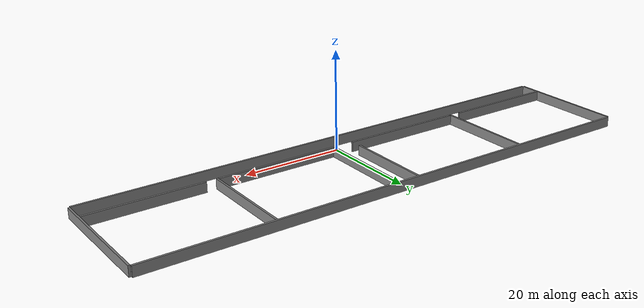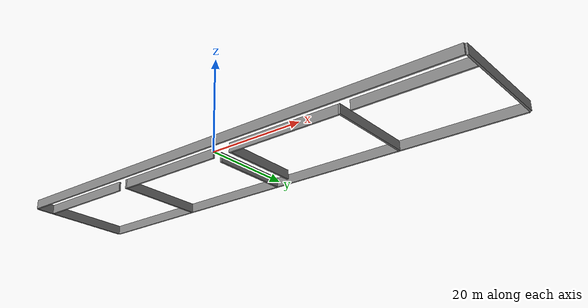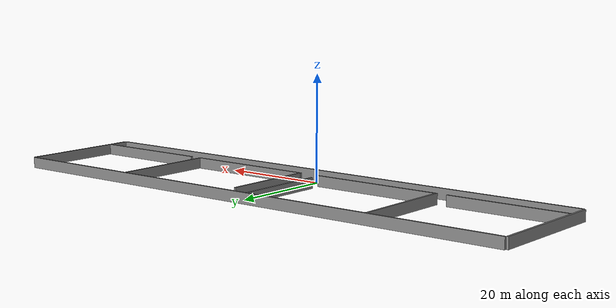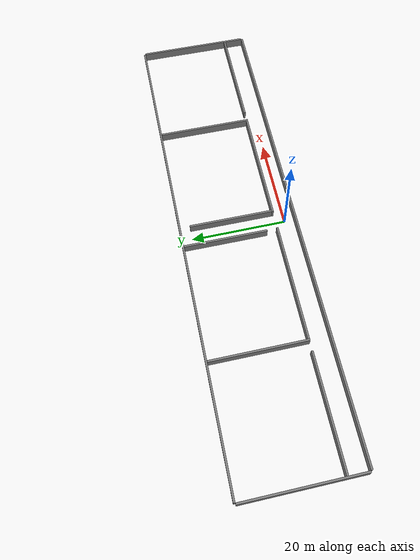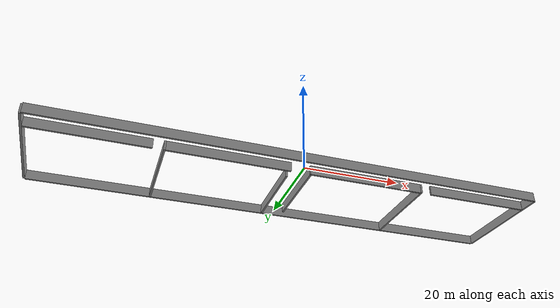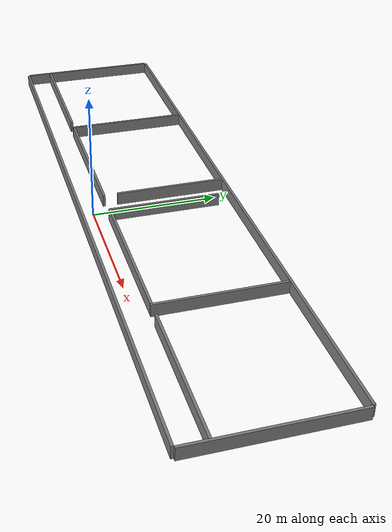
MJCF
<mujoco model="walls">

	<default>
		<default class="atlas_transpalet_walls">
			<default class="atlas_transpalet_wall">
				<geom type="box" pos="0 0 0" size="0 0 0" euler="0 0 0" mass="5"/>
			</default>
		</default>
	</default>

	<worldbody>
		<body pos="0 0 0" euler="0 0 0">
			<geom name="wall_1" class="atlas_transpalet_wall" pos="0 -2.2 1" size="52 0.2 1"/>
			<geom name="wall_2" class="atlas_transpalet_wall" pos="-52.2 10 1" size="0.2 12 1"/>
			<geom name="wall_3" class="atlas_transpalet_wall" pos="0 22.2 1" size="52 0.2 1"/>
			<geom name="wall_4" class="atlas_transpalet_wall" pos="52.2 10 1" size="0.2 12 1"/>
			<geom name="wall_5" class="atlas_transpalet_wall" pos="-27 12 1" size="0.2 10 1"/>
			<geom name="wall_6" class="atlas_transpalet_wall" pos="-2.2 13.2 1" size="0.2 8.8 1"/>
			<geom name="wall_7" class="atlas_transpalet_wall" pos="2.2 11.2 1" size="0.2 8.8 1"/>
			<geom name="wall_8" class="atlas_transpalet_wall" pos="27 12 1" size="0.2 10 1"/>
			<geom name="wall_9" class="atlas_transpalet_wall" pos="-14.4 2.2 1" size="12.4 0.2 1"/>
			<geom name="wall_10" class="atlas_transpalet_wall" pos="-40.6 2.2 1" size="11.4 0.2 1"/>
			<geom name="wall_11" class="atlas_transpalet_wall" pos="14.4 2.2 1" size="12.4 0.2 1"/>
			<geom name="wall_12" class="atlas_transpalet_wall" pos="40.6 2.2 1" size="11.4 0.2 1"/>
		</body>
	</worldbody>

</mujoco>
